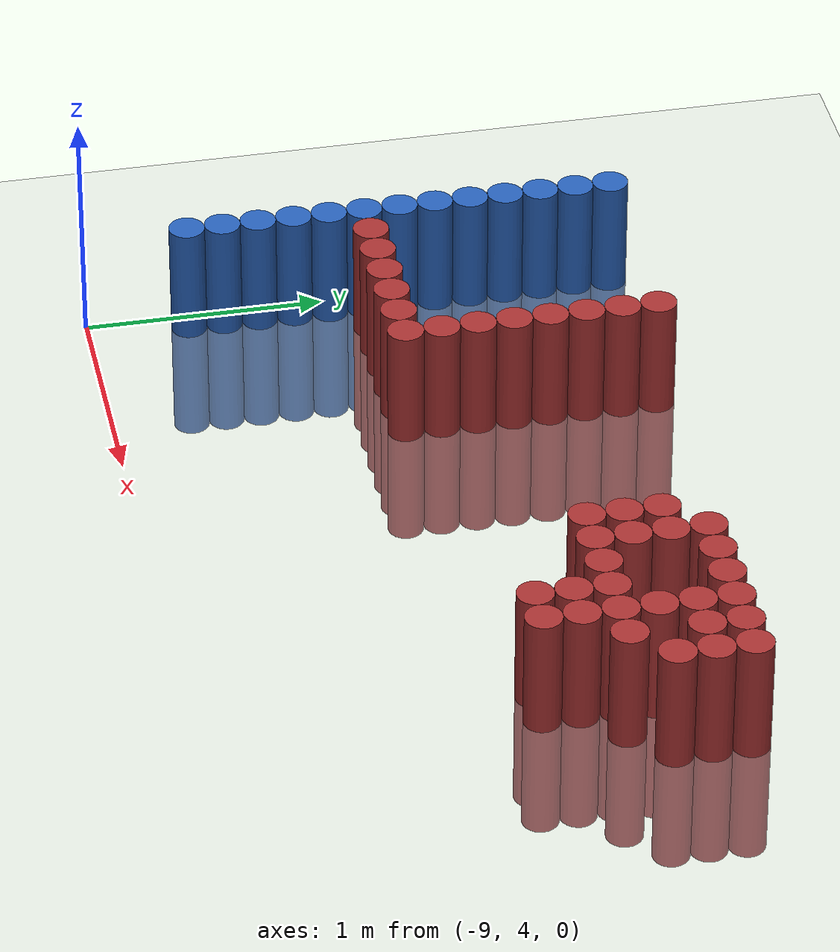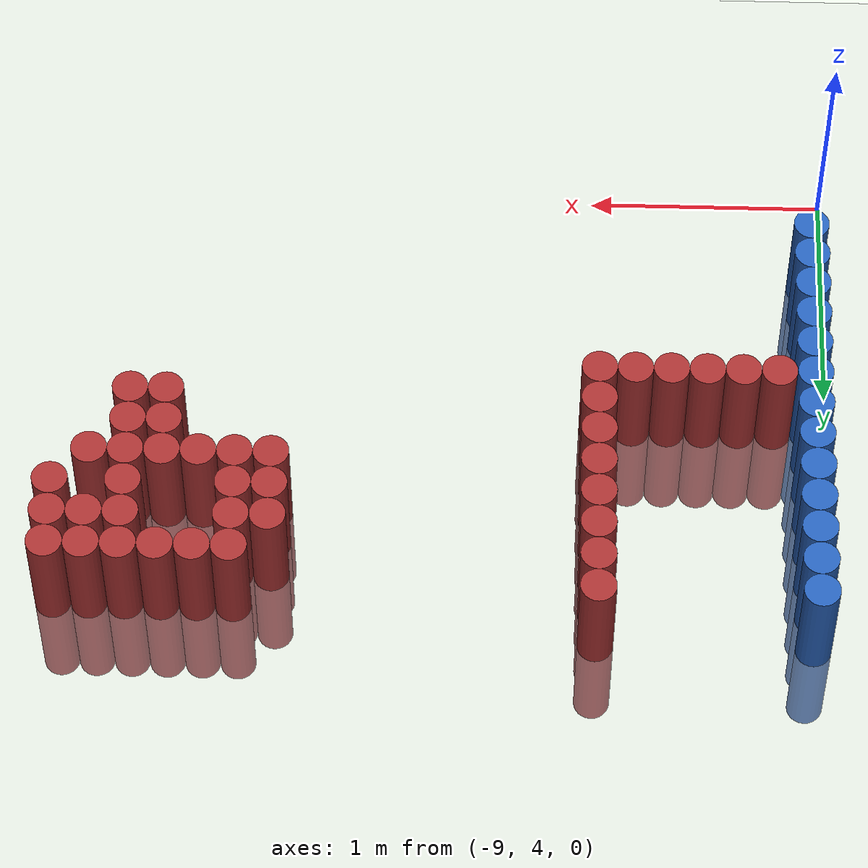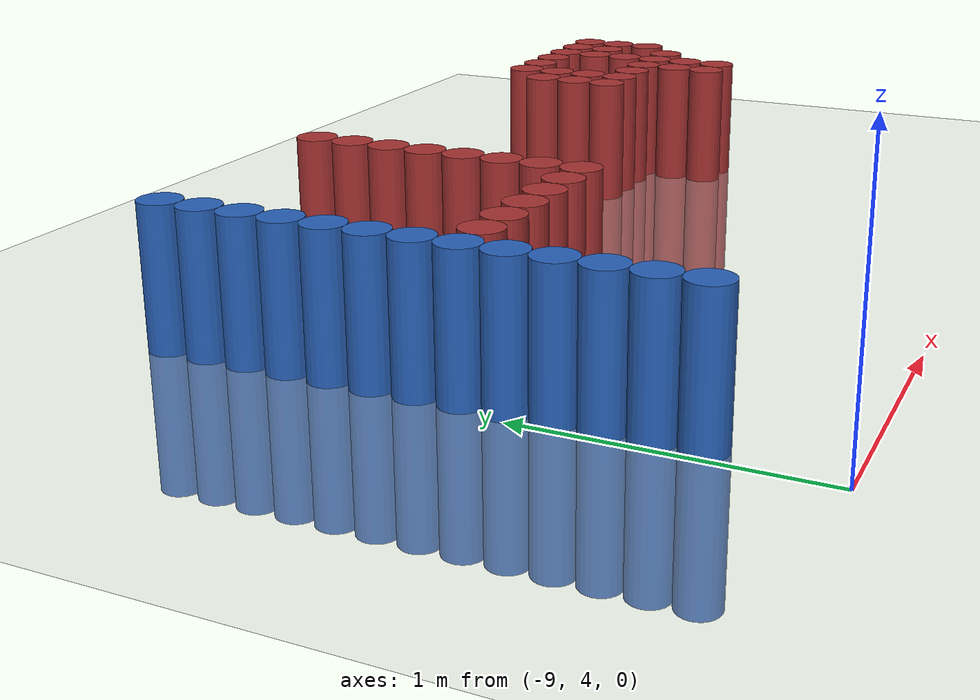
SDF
<sdf version="1.6">
 <world name="default">
  <model name="ground_plane">
   <static>1</static>
   <link name="link">
    <collision name="collision">
     <geometry><plane><normal>0 0 1</normal><size>100 100</size></plane></geometry>
     <surface><friction><ode><mu>100</mu><mu2>50</mu2></ode></friction></surface>
    </collision>
    <visual name="visual">
     <cast_shadows>0</cast_shadows>
     <geometry><plane><normal>0 0 1</normal><size>100 100</size></plane></geometry>
     <material>
      <script><uri>file://media/materials/scripts/gazebo.material</uri><name>Gazebo/Grey</name></script>
     </material>
    </visual>
   </link>
  </model>
  <model name="unit_cylinder_116">
   <static>1</static>
   <pose>-8.925000 4.425000 0.000000 0.000000 0.000000 0.000000</pose>
   <link name="link">
    <inertial>
     <mass>1</mass>
     <inertia><ixx>0.145833</ixx><ixy>0</ixy><ixz>0</ixz><iyy>0.145833</iyy><iyz>0</iyz><izz>0.125</izz></inertia>
    </inertial>
    <collision name="collision">
     <geometry><cylinder><radius>0.075000</radius><length>1</length></cylinder></geometry>
    </collision>
    <visual name="visual">
     <geometry><cylinder><radius>0.075000</radius><length>1</length></cylinder></geometry>
     <material>
      <ambient>0.152000 0.379000 0.720000 1</ambient>
      <diffuse>0.152000 0.379000 0.720000 1</diffuse>
     </material>
     <material>
      <script><name>Gazebo/Grey</name><uri>file://media/materials/scripts/gazebo.material</uri></script>
     </material>
    </visual>
   </link>
  </model>
  <model name="unit_cylinder_118">
   <static>1</static>
   <pose>-8.925000 4.575000 0.000000 0.000000 0.000000 0.000000</pose>
   <link name="link">
    <inertial>
     <mass>1</mass>
     <inertia><ixx>0.145833</ixx><ixy>0</ixy><ixz>0</ixz><iyy>0.145833</iyy><iyz>0</iyz><izz>0.125</izz></inertia>
    </inertial>
    <collision name="collision">
     <geometry><cylinder><radius>0.075000</radius><length>1</length></cylinder></geometry>
    </collision>
    <visual name="visual">
     <geometry><cylinder><radius>0.075000</radius><length>1</length></cylinder></geometry>
     <material>
      <ambient>0.152000 0.379000 0.720000 1</ambient>
      <diffuse>0.152000 0.379000 0.720000 1</diffuse>
     </material>
     <material>
      <script><name>Gazebo/Grey</name><uri>file://media/materials/scripts/gazebo.material</uri></script>
     </material>
    </visual>
   </link>
  </model>
  <model name="unit_cylinder_120">
   <static>1</static>
   <pose>-8.925000 4.725000 0.000000 0.000000 0.000000 0.000000</pose>
   <link name="link">
    <inertial>
     <mass>1</mass>
     <inertia><ixx>0.145833</ixx><ixy>0</ixy><ixz>0</ixz><iyy>0.145833</iyy><iyz>0</iyz><izz>0.125</izz></inertia>
    </inertial>
    <collision name="collision">
     <geometry><cylinder><radius>0.075000</radius><length>1</length></cylinder></geometry>
    </collision>
    <visual name="visual">
     <geometry><cylinder><radius>0.075000</radius><length>1</length></cylinder></geometry>
     <material>
      <ambient>0.152000 0.379000 0.720000 1</ambient>
      <diffuse>0.152000 0.379000 0.720000 1</diffuse>
     </material>
     <material>
      <script><name>Gazebo/Grey</name><uri>file://media/materials/scripts/gazebo.material</uri></script>
     </material>
    </visual>
   </link>
  </model>
  <model name="unit_cylinder_122">
   <static>1</static>
   <pose>-8.925000 4.875000 0.000000 0.000000 0.000000 0.000000</pose>
   <link name="link">
    <inertial>
     <mass>1</mass>
     <inertia><ixx>0.145833</ixx><ixy>0</ixy><ixz>0</ixz><iyy>0.145833</iyy><iyz>0</iyz><izz>0.125</izz></inertia>
    </inertial>
    <collision name="collision">
     <geometry><cylinder><radius>0.075000</radius><length>1</length></cylinder></geometry>
    </collision>
    <visual name="visual">
     <geometry><cylinder><radius>0.075000</radius><length>1</length></cylinder></geometry>
     <material>
      <ambient>0.152000 0.379000 0.720000 1</ambient>
      <diffuse>0.152000 0.379000 0.720000 1</diffuse>
     </material>
     <material>
      <script><name>Gazebo/Grey</name><uri>file://media/materials/scripts/gazebo.material</uri></script>
     </material>
    </visual>
   </link>
  </model>
  <model name="unit_cylinder_124">
   <static>1</static>
   <pose>-8.925000 5.025000 0.000000 0.000000 0.000000 0.000000</pose>
   <link name="link">
    <inertial>
     <mass>1</mass>
     <inertia><ixx>0.145833</ixx><ixy>0</ixy><ixz>0</ixz><iyy>0.145833</iyy><iyz>0</iyz><izz>0.125</izz></inertia>
    </inertial>
    <collision name="collision">
     <geometry><cylinder><radius>0.075000</radius><length>1</length></cylinder></geometry>
    </collision>
    <visual name="visual">
     <geometry><cylinder><radius>0.075000</radius><length>1</length></cylinder></geometry>
     <material>
      <ambient>0.152000 0.379000 0.720000 1</ambient>
      <diffuse>0.152000 0.379000 0.720000 1</diffuse>
     </material>
     <material>
      <script><name>Gazebo/Grey</name><uri>file://media/materials/scripts/gazebo.material</uri></script>
     </material>
    </visual>
   </link>
  </model>
  <model name="unit_cylinder_125">
   <static>1</static>
   <pose>-8.925000 5.175000 0.000000 0.000000 0.000000 0.000000</pose>
   <link name="link">
    <inertial>
     <mass>1</mass>
     <inertia><ixx>0.145833</ixx><ixy>0</ixy><ixz>0</ixz><iyy>0.145833</iyy><iyz>0</iyz><izz>0.125</izz></inertia>
    </inertial>
    <collision name="collision">
     <geometry><cylinder><radius>0.075000</radius><length>1</length></cylinder></geometry>
    </collision>
    <visual name="visual">
     <geometry><cylinder><radius>0.075000</radius><length>1</length></cylinder></geometry>
     <material>
      <ambient>0.152000 0.379000 0.720000 1</ambient>
      <diffuse>0.152000 0.379000 0.720000 1</diffuse>
     </material>
     <material>
      <script><name>Gazebo/Grey</name><uri>file://media/materials/scripts/gazebo.material</uri></script>
     </material>
    </visual>
   </link>
  </model>
  <model name="unit_cylinder_126">
   <static>1</static>
   <pose>-8.925000 5.325000 0.000000 0.000000 0.000000 0.000000</pose>
   <link name="link">
    <inertial>
     <mass>1</mass>
     <inertia><ixx>0.145833</ixx><ixy>0</ixy><ixz>0</ixz><iyy>0.145833</iyy><iyz>0</iyz><izz>0.125</izz></inertia>
    </inertial>
    <collision name="collision">
     <geometry><cylinder><radius>0.075000</radius><length>1</length></cylinder></geometry>
    </collision>
    <visual name="visual">
     <geometry><cylinder><radius>0.075000</radius><length>1</length></cylinder></geometry>
     <material>
      <ambient>0.152000 0.379000 0.720000 1</ambient>
      <diffuse>0.152000 0.379000 0.720000 1</diffuse>
     </material>
     <material>
      <script><name>Gazebo/Grey</name><uri>file://media/materials/scripts/gazebo.material</uri></script>
     </material>
    </visual>
   </link>
  </model>
  <model name="unit_cylinder_127">
   <static>1</static>
   <pose>-8.925000 5.475000 0.000000 0.000000 0.000000 0.000000</pose>
   <link name="link">
    <inertial>
     <mass>1</mass>
     <inertia><ixx>0.145833</ixx><ixy>0</ixy><ixz>0</ixz><iyy>0.145833</iyy><iyz>0</iyz><izz>0.125</izz></inertia>
    </inertial>
    <collision name="collision">
     <geometry><cylinder><radius>0.075000</radius><length>1</length></cylinder></geometry>
    </collision>
    <visual name="visual">
     <geometry><cylinder><radius>0.075000</radius><length>1</length></cylinder></geometry>
     <material>
      <ambient>0.152000 0.379000 0.720000 1</ambient>
      <diffuse>0.152000 0.379000 0.720000 1</diffuse>
     </material>
     <material>
      <script><name>Gazebo/Grey</name><uri>file://media/materials/scripts/gazebo.material</uri></script>
     </material>
    </visual>
   </link>
  </model>
  <model name="unit_cylinder_128">
   <static>1</static>
   <pose>-8.925000 5.625000 0.000000 0.000000 0.000000 0.000000</pose>
   <link name="link">
    <inertial>
     <mass>1</mass>
     <inertia><ixx>0.145833</ixx><ixy>0</ixy><ixz>0</ixz><iyy>0.145833</iyy><iyz>0</iyz><izz>0.125</izz></inertia>
    </inertial>
    <collision name="collision">
     <geometry><cylinder><radius>0.075000</radius><length>1</length></cylinder></geometry>
    </collision>
    <visual name="visual">
     <geometry><cylinder><radius>0.075000</radius><length>1</length></cylinder></geometry>
     <material>
      <ambient>0.152000 0.379000 0.720000 1</ambient>
      <diffuse>0.152000 0.379000 0.720000 1</diffuse>
     </material>
     <material>
      <script><name>Gazebo/Grey</name><uri>file://media/materials/scripts/gazebo.material</uri></script>
     </material>
    </visual>
   </link>
  </model>
  <model name="unit_cylinder_129">
   <static>1</static>
   <pose>-8.925000 5.775000 0.000000 0.000000 0.000000 0.000000</pose>
   <link name="link">
    <inertial>
     <mass>1</mass>
     <inertia><ixx>0.145833</ixx><ixy>0</ixy><ixz>0</ixz><iyy>0.145833</iyy><iyz>0</iyz><izz>0.125</izz></inertia>
    </inertial>
    <collision name="collision">
     <geometry><cylinder><radius>0.075000</radius><length>1</length></cylinder></geometry>
    </collision>
    <visual name="visual">
     <geometry><cylinder><radius>0.075000</radius><length>1</length></cylinder></geometry>
     <material>
      <ambient>0.152000 0.379000 0.720000 1</ambient>
      <diffuse>0.152000 0.379000 0.720000 1</diffuse>
     </material>
     <material>
      <script><name>Gazebo/Grey</name><uri>file://media/materials/scripts/gazebo.material</uri></script>
     </material>
    </visual>
   </link>
  </model>
  <model name="unit_cylinder_130">
   <static>1</static>
   <pose>-8.925000 5.925000 0.000000 0.000000 0.000000 0.000000</pose>
   <link name="link">
    <inertial>
     <mass>1</mass>
     <inertia><ixx>0.145833</ixx><ixy>0</ixy><ixz>0</ixz><iyy>0.145833</iyy><iyz>0</iyz><izz>0.125</izz></inertia>
    </inertial>
    <collision name="collision">
     <geometry><cylinder><radius>0.075000</radius><length>1</length></cylinder></geometry>
    </collision>
    <visual name="visual">
     <geometry><cylinder><radius>0.075000</radius><length>1</length></cylinder></geometry>
     <material>
      <ambient>0.152000 0.379000 0.720000 1</ambient>
      <diffuse>0.152000 0.379000 0.720000 1</diffuse>
     </material>
     <material>
      <script><name>Gazebo/Grey</name><uri>file://media/materials/scripts/gazebo.material</uri></script>
     </material>
    </visual>
   </link>
  </model>
  <model name="unit_cylinder_131">
   <static>1</static>
   <pose>-8.925000 6.075000 0.000000 0.000000 0.000000 0.000000</pose>
   <link name="link">
    <inertial>
     <mass>1</mass>
     <inertia><ixx>0.145833</ixx><ixy>0</ixy><ixz>0</ixz><iyy>0.145833</iyy><iyz>0</iyz><izz>0.125</izz></inertia>
    </inertial>
    <collision name="collision">
     <geometry><cylinder><radius>0.075000</radius><length>1</length></cylinder></geometry>
    </collision>
    <visual name="visual">
     <geometry><cylinder><radius>0.075000</radius><length>1</length></cylinder></geometry>
     <material>
      <ambient>0.152000 0.379000 0.720000 1</ambient>
      <diffuse>0.152000 0.379000 0.720000 1</diffuse>
     </material>
     <material>
      <script><name>Gazebo/Grey</name><uri>file://media/materials/scripts/gazebo.material</uri></script>
     </material>
    </visual>
   </link>
  </model>
  <model name="unit_cylinder_132">
   <static>1</static>
   <pose>-8.925000 6.225000 0.000000 0.000000 0.000000 0.000000</pose>
   <link name="link">
    <inertial>
     <mass>1</mass>
     <inertia><ixx>0.145833</ixx><ixy>0</ixy><ixz>0</ixz><iyy>0.145833</iyy><iyz>0</iyz><izz>0.125</izz></inertia>
    </inertial>
    <collision name="collision">
     <geometry><cylinder><radius>0.075000</radius><length>1</length></cylinder></geometry>
    </collision>
    <visual name="visual">
     <geometry><cylinder><radius>0.075000</radius><length>1</length></cylinder></geometry>
     <material>
      <ambient>0.152000 0.379000 0.720000 1</ambient>
      <diffuse>0.152000 0.379000 0.720000 1</diffuse>
     </material>
     <material>
      <script><name>Gazebo/Grey</name><uri>file://media/materials/scripts/gazebo.material</uri></script>
     </material>
    </visual>
   </link>
  </model>
  <model name="unit_cylinder_155">
   <static>1</static>
   <pose>-8.775000 5.175000 0.000000 0.000000 0.000000 0.000000</pose>
   <link name="link">
    <inertial>
     <mass>1</mass>
     <inertia><ixx>0.145833</ixx><ixy>0</ixy><ixz>0</ixz><iyy>0.145833</iyy><iyz>0</iyz><izz>0.125</izz></inertia>
    </inertial>
    <collision name="collision">
     <geometry><cylinder><radius>0.075000</radius><length>1</length></cylinder></geometry>
    </collision>
    <visual name="visual">
     <geometry><cylinder><radius>0.075000</radius><length>1</length></cylinder></geometry>
     <material>
      <ambient>0.648000 0.192000 0.192000 1</ambient>
      <diffuse>0.648000 0.192000 0.192000 1</diffuse>
     </material>
     <material>
      <script><name>Gazebo/Grey</name><uri>file://media/materials/scripts/gazebo.material</uri></script>
     </material>
    </visual>
   </link>
  </model>
  <model name="unit_cylinder_157">
   <static>1</static>
   <pose>-8.625000 5.175000 0.000000 0.000000 0.000000 0.000000</pose>
   <link name="link">
    <inertial>
     <mass>1</mass>
     <inertia><ixx>0.145833</ixx><ixy>0</ixy><ixz>0</ixz><iyy>0.145833</iyy><iyz>0</iyz><izz>0.125</izz></inertia>
    </inertial>
    <collision name="collision">
     <geometry><cylinder><radius>0.075000</radius><length>1</length></cylinder></geometry>
    </collision>
    <visual name="visual">
     <geometry><cylinder><radius>0.075000</radius><length>1</length></cylinder></geometry>
     <material>
      <ambient>0.648000 0.192000 0.192000 1</ambient>
      <diffuse>0.648000 0.192000 0.192000 1</diffuse>
     </material>
     <material>
      <script><name>Gazebo/Grey</name><uri>file://media/materials/scripts/gazebo.material</uri></script>
     </material>
    </visual>
   </link>
  </model>
  <model name="unit_cylinder_159">
   <static>1</static>
   <pose>-8.475000 5.175000 0.000000 0.000000 0.000000 0.000000</pose>
   <link name="link">
    <inertial>
     <mass>1</mass>
     <inertia><ixx>0.145833</ixx><ixy>0</ixy><ixz>0</ixz><iyy>0.145833</iyy><iyz>0</iyz><izz>0.125</izz></inertia>
    </inertial>
    <collision name="collision">
     <geometry><cylinder><radius>0.075000</radius><length>1</length></cylinder></geometry>
    </collision>
    <visual name="visual">
     <geometry><cylinder><radius>0.075000</radius><length>1</length></cylinder></geometry>
     <material>
      <ambient>0.648000 0.192000 0.192000 1</ambient>
      <diffuse>0.648000 0.192000 0.192000 1</diffuse>
     </material>
     <material>
      <script><name>Gazebo/Grey</name><uri>file://media/materials/scripts/gazebo.material</uri></script>
     </material>
    </visual>
   </link>
  </model>
  <model name="unit_cylinder_161">
   <static>1</static>
   <pose>-8.325000 5.175000 0.000000 0.000000 0.000000 0.000000</pose>
   <link name="link">
    <inertial>
     <mass>1</mass>
     <inertia><ixx>0.145833</ixx><ixy>0</ixy><ixz>0</ixz><iyy>0.145833</iyy><iyz>0</iyz><izz>0.125</izz></inertia>
    </inertial>
    <collision name="collision">
     <geometry><cylinder><radius>0.075000</radius><length>1</length></cylinder></geometry>
    </collision>
    <visual name="visual">
     <geometry><cylinder><radius>0.075000</radius><length>1</length></cylinder></geometry>
     <material>
      <ambient>0.648000 0.192000 0.192000 1</ambient>
      <diffuse>0.648000 0.192000 0.192000 1</diffuse>
     </material>
     <material>
      <script><name>Gazebo/Grey</name><uri>file://media/materials/scripts/gazebo.material</uri></script>
     </material>
    </visual>
   </link>
  </model>
  <model name="unit_cylinder_163">
   <static>1</static>
   <pose>-8.175000 5.175000 0.000000 0.000000 0.000000 0.000000</pose>
   <link name="link">
    <inertial>
     <mass>1</mass>
     <inertia><ixx>0.145833</ixx><ixy>0</ixy><ixz>0</ixz><iyy>0.145833</iyy><iyz>0</iyz><izz>0.125</izz></inertia>
    </inertial>
    <collision name="collision">
     <geometry><cylinder><radius>0.075000</radius><length>1</length></cylinder></geometry>
    </collision>
    <visual name="visual">
     <geometry><cylinder><radius>0.075000</radius><length>1</length></cylinder></geometry>
     <material>
      <ambient>0.648000 0.192000 0.192000 1</ambient>
      <diffuse>0.648000 0.192000 0.192000 1</diffuse>
     </material>
     <material>
      <script><name>Gazebo/Grey</name><uri>file://media/materials/scripts/gazebo.material</uri></script>
     </material>
    </visual>
   </link>
  </model>
  <model name="unit_cylinder_165">
   <static>1</static>
   <pose>-8.025000 5.175000 0.000000 0.000000 0.000000 0.000000</pose>
   <link name="link">
    <inertial>
     <mass>1</mass>
     <inertia><ixx>0.145833</ixx><ixy>0</ixy><ixz>0</ixz><iyy>0.145833</iyy><iyz>0</iyz><izz>0.125</izz></inertia>
    </inertial>
    <collision name="collision">
     <geometry><cylinder><radius>0.075000</radius><length>1</length></cylinder></geometry>
    </collision>
    <visual name="visual">
     <geometry><cylinder><radius>0.075000</radius><length>1</length></cylinder></geometry>
     <material>
      <ambient>0.648000 0.192000 0.192000 1</ambient>
      <diffuse>0.648000 0.192000 0.192000 1</diffuse>
     </material>
     <material>
      <script><name>Gazebo/Grey</name><uri>file://media/materials/scripts/gazebo.material</uri></script>
     </material>
    </visual>
   </link>
  </model>
  <model name="unit_cylinder_166">
   <static>1</static>
   <pose>-8.025000 5.325000 0.000000 0.000000 0.000000 0.000000</pose>
   <link name="link">
    <inertial>
     <mass>1</mass>
     <inertia><ixx>0.145833</ixx><ixy>0</ixy><ixz>0</ixz><iyy>0.145833</iyy><iyz>0</iyz><izz>0.125</izz></inertia>
    </inertial>
    <collision name="collision">
     <geometry><cylinder><radius>0.075000</radius><length>1</length></cylinder></geometry>
    </collision>
    <visual name="visual">
     <geometry><cylinder><radius>0.075000</radius><length>1</length></cylinder></geometry>
     <material>
      <ambient>0.648000 0.192000 0.192000 1</ambient>
      <diffuse>0.648000 0.192000 0.192000 1</diffuse>
     </material>
     <material>
      <script><name>Gazebo/Grey</name><uri>file://media/materials/scripts/gazebo.material</uri></script>
     </material>
    </visual>
   </link>
  </model>
  <model name="unit_cylinder_167">
   <static>1</static>
   <pose>-8.025000 5.475000 0.000000 0.000000 0.000000 0.000000</pose>
   <link name="link">
    <inertial>
     <mass>1</mass>
     <inertia><ixx>0.145833</ixx><ixy>0</ixy><ixz>0</ixz><iyy>0.145833</iyy><iyz>0</iyz><izz>0.125</izz></inertia>
    </inertial>
    <collision name="collision">
     <geometry><cylinder><radius>0.075000</radius><length>1</length></cylinder></geometry>
    </collision>
    <visual name="visual">
     <geometry><cylinder><radius>0.075000</radius><length>1</length></cylinder></geometry>
     <material>
      <ambient>0.648000 0.192000 0.192000 1</ambient>
      <diffuse>0.648000 0.192000 0.192000 1</diffuse>
     </material>
     <material>
      <script><name>Gazebo/Grey</name><uri>file://media/materials/scripts/gazebo.material</uri></script>
     </material>
    </visual>
   </link>
  </model>
  <model name="unit_cylinder_168">
   <static>1</static>
   <pose>-8.025000 5.625000 0.000000 0.000000 0.000000 0.000000</pose>
   <link name="link">
    <inertial>
     <mass>1</mass>
     <inertia><ixx>0.145833</ixx><ixy>0</ixy><ixz>0</ixz><iyy>0.145833</iyy><iyz>0</iyz><izz>0.125</izz></inertia>
    </inertial>
    <collision name="collision">
     <geometry><cylinder><radius>0.075000</radius><length>1</length></cylinder></geometry>
    </collision>
    <visual name="visual">
     <geometry><cylinder><radius>0.075000</radius><length>1</length></cylinder></geometry>
     <material>
      <ambient>0.648000 0.192000 0.192000 1</ambient>
      <diffuse>0.648000 0.192000 0.192000 1</diffuse>
     </material>
     <material>
      <script><name>Gazebo/Grey</name><uri>file://media/materials/scripts/gazebo.material</uri></script>
     </material>
    </visual>
   </link>
  </model>
  <model name="unit_cylinder_169">
   <static>1</static>
   <pose>-8.025000 5.775000 0.000000 0.000000 0.000000 0.000000</pose>
   <link name="link">
    <inertial>
     <mass>1</mass>
     <inertia><ixx>0.145833</ixx><ixy>0</ixy><ixz>0</ixz><iyy>0.145833</iyy><iyz>0</iyz><izz>0.125</izz></inertia>
    </inertial>
    <collision name="collision">
     <geometry><cylinder><radius>0.075000</radius><length>1</length></cylinder></geometry>
    </collision>
    <visual name="visual">
     <geometry><cylinder><radius>0.075000</radius><length>1</length></cylinder></geometry>
     <material>
      <ambient>0.648000 0.192000 0.192000 1</ambient>
      <diffuse>0.648000 0.192000 0.192000 1</diffuse>
     </material>
     <material>
      <script><name>Gazebo/Grey</name><uri>file://media/materials/scripts/gazebo.material</uri></script>
     </material>
    </visual>
   </link>
  </model>
  <model name="unit_cylinder_170">
   <static>1</static>
   <pose>-8.025000 5.925000 0.000000 0.000000 0.000000 0.000000</pose>
   <link name="link">
    <inertial>
     <mass>1</mass>
     <inertia><ixx>0.145833</ixx><ixy>0</ixy><ixz>0</ixz><iyy>0.145833</iyy><iyz>0</iyz><izz>0.125</izz></inertia>
    </inertial>
    <collision name="collision">
     <geometry><cylinder><radius>0.075000</radius><length>1</length></cylinder></geometry>
    </collision>
    <visual name="visual">
     <geometry><cylinder><radius>0.075000</radius><length>1</length></cylinder></geometry>
     <material>
      <ambient>0.648000 0.192000 0.192000 1</ambient>
      <diffuse>0.648000 0.192000 0.192000 1</diffuse>
     </material>
     <material>
      <script><name>Gazebo/Grey</name><uri>file://media/materials/scripts/gazebo.material</uri></script>
     </material>
    </visual>
   </link>
  </model>
  <model name="unit_cylinder_171">
   <static>1</static>
   <pose>-8.025000 6.075000 0.000000 0.000000 0.000000 0.000000</pose>
   <link name="link">
    <inertial>
     <mass>1</mass>
     <inertia><ixx>0.145833</ixx><ixy>0</ixy><ixz>0</ixz><iyy>0.145833</iyy><iyz>0</iyz><izz>0.125</izz></inertia>
    </inertial>
    <collision name="collision">
     <geometry><cylinder><radius>0.075000</radius><length>1</length></cylinder></geometry>
    </collision>
    <visual name="visual">
     <geometry><cylinder><radius>0.075000</radius><length>1</length></cylinder></geometry>
     <material>
      <ambient>0.648000 0.192000 0.192000 1</ambient>
      <diffuse>0.648000 0.192000 0.192000 1</diffuse>
     </material>
     <material>
      <script><name>Gazebo/Grey</name><uri>file://media/materials/scripts/gazebo.material</uri></script>
     </material>
    </visual>
   </link>
  </model>
  <model name="unit_cylinder_172">
   <static>1</static>
   <pose>-8.025000 6.225000 0.000000 0.000000 0.000000 0.000000</pose>
   <link name="link">
    <inertial>
     <mass>1</mass>
     <inertia><ixx>0.145833</ixx><ixy>0</ixy><ixz>0</ixz><iyy>0.145833</iyy><iyz>0</iyz><izz>0.125</izz></inertia>
    </inertial>
    <collision name="collision">
     <geometry><cylinder><radius>0.075000</radius><length>1</length></cylinder></geometry>
    </collision>
    <visual name="visual">
     <geometry><cylinder><radius>0.075000</radius><length>1</length></cylinder></geometry>
     <material>
      <ambient>0.648000 0.192000 0.192000 1</ambient>
      <diffuse>0.648000 0.192000 0.192000 1</diffuse>
     </material>
     <material>
      <script><name>Gazebo/Grey</name><uri>file://media/materials/scripts/gazebo.material</uri></script>
     </material>
    </visual>
   </link>
  </model>
  <model name="unit_cylinder_202">
   <static>1</static>
   <pose>-6.675000 5.625000 0.000000 0.000000 0.000000 0.000000</pose>
   <link name="link">
    <inertial>
     <mass>1</mass>
     <inertia><ixx>0.145833</ixx><ixy>0</ixy><ixz>0</ixz><iyy>0.145833</iyy><iyz>0</iyz><izz>0.125</izz></inertia>
    </inertial>
    <collision name="collision">
     <geometry><cylinder><radius>0.075000</radius><length>1</length></cylinder></geometry>
    </collision>
    <visual name="visual">
     <geometry><cylinder><radius>0.075000</radius><length>1</length></cylinder></geometry>
     <material>
      <ambient>0.648000 0.192000 0.192000 1</ambient>
      <diffuse>0.648000 0.192000 0.192000 1</diffuse>
     </material>
     <material>
      <script><name>Gazebo/Grey</name><uri>file://media/materials/scripts/gazebo.material</uri></script>
     </material>
    </visual>
   </link>
  </model>
  <model name="unit_cylinder_203">
   <static>1</static>
   <pose>-6.675000 5.775000 0.000000 0.000000 0.000000 0.000000</pose>
   <link name="link">
    <inertial>
     <mass>1</mass>
     <inertia><ixx>0.145833</ixx><ixy>0</ixy><ixz>0</ixz><iyy>0.145833</iyy><iyz>0</iyz><izz>0.125</izz></inertia>
    </inertial>
    <collision name="collision">
     <geometry><cylinder><radius>0.075000</radius><length>1</length></cylinder></geometry>
    </collision>
    <visual name="visual">
     <geometry><cylinder><radius>0.075000</radius><length>1</length></cylinder></geometry>
     <material>
      <ambient>0.648000 0.192000 0.192000 1</ambient>
      <diffuse>0.648000 0.192000 0.192000 1</diffuse>
     </material>
     <material>
      <script><name>Gazebo/Grey</name><uri>file://media/materials/scripts/gazebo.material</uri></script>
     </material>
    </visual>
   </link>
  </model>
  <model name="unit_cylinder_204">
   <static>1</static>
   <pose>-6.675000 5.925000 0.000000 0.000000 0.000000 0.000000</pose>
   <link name="link">
    <inertial>
     <mass>1</mass>
     <inertia><ixx>0.145833</ixx><ixy>0</ixy><ixz>0</ixz><iyy>0.145833</iyy><iyz>0</iyz><izz>0.125</izz></inertia>
    </inertial>
    <collision name="collision">
     <geometry><cylinder><radius>0.075000</radius><length>1</length></cylinder></geometry>
    </collision>
    <visual name="visual">
     <geometry><cylinder><radius>0.075000</radius><length>1</length></cylinder></geometry>
     <material>
      <ambient>0.648000 0.192000 0.192000 1</ambient>
      <diffuse>0.648000 0.192000 0.192000 1</diffuse>
     </material>
     <material>
      <script><name>Gazebo/Grey</name><uri>file://media/materials/scripts/gazebo.material</uri></script>
     </material>
    </visual>
   </link>
  </model>
  <model name="unit_cylinder_207">
   <static>1</static>
   <pose>-6.525000 5.625000 0.000000 0.000000 0.000000 0.000000</pose>
   <link name="link">
    <inertial>
     <mass>1</mass>
     <inertia><ixx>0.145833</ixx><ixy>0</ixy><ixz>0</ixz><iyy>0.145833</iyy><iyz>0</iyz><izz>0.125</izz></inertia>
    </inertial>
    <collision name="collision">
     <geometry><cylinder><radius>0.075000</radius><length>1</length></cylinder></geometry>
    </collision>
    <visual name="visual">
     <geometry><cylinder><radius>0.075000</radius><length>1</length></cylinder></geometry>
     <material>
      <ambient>0.648000 0.192000 0.192000 1</ambient>
      <diffuse>0.648000 0.192000 0.192000 1</diffuse>
     </material>
     <material>
      <script><name>Gazebo/Grey</name><uri>file://media/materials/scripts/gazebo.material</uri></script>
     </material>
    </visual>
   </link>
  </model>
  <model name="unit_cylinder_208">
   <static>1</static>
   <pose>-6.525000 5.775000 0.000000 0.000000 0.000000 0.000000</pose>
   <link name="link">
    <inertial>
     <mass>1</mass>
     <inertia><ixx>0.145833</ixx><ixy>0</ixy><ixz>0</ixz><iyy>0.145833</iyy><iyz>0</iyz><izz>0.125</izz></inertia>
    </inertial>
    <collision name="collision">
     <geometry><cylinder><radius>0.075000</radius><length>1</length></cylinder></geometry>
    </collision>
    <visual name="visual">
     <geometry><cylinder><radius>0.075000</radius><length>1</length></cylinder></geometry>
     <material>
      <ambient>0.648000 0.192000 0.192000 1</ambient>
      <diffuse>0.648000 0.192000 0.192000 1</diffuse>
     </material>
     <material>
      <script><name>Gazebo/Grey</name><uri>file://media/materials/scripts/gazebo.material</uri></script>
     </material>
    </visual>
   </link>
  </model>
  <model name="unit_cylinder_209">
   <static>1</static>
   <pose>-6.525000 5.925000 0.000000 0.000000 0.000000 0.000000</pose>
   <link name="link">
    <inertial>
     <mass>1</mass>
     <inertia><ixx>0.145833</ixx><ixy>0</ixy><ixz>0</ixz><iyy>0.145833</iyy><iyz>0</iyz><izz>0.125</izz></inertia>
    </inertial>
    <collision name="collision">
     <geometry><cylinder><radius>0.075000</radius><length>1</length></cylinder></geometry>
    </collision>
    <visual name="visual">
     <geometry><cylinder><radius>0.075000</radius><length>1</length></cylinder></geometry>
     <material>
      <ambient>0.648000 0.192000 0.192000 1</ambient>
      <diffuse>0.648000 0.192000 0.192000 1</diffuse>
     </material>
     <material>
      <script><name>Gazebo/Grey</name><uri>file://media/materials/scripts/gazebo.material</uri></script>
     </material>
    </visual>
   </link>
  </model>
  <model name="unit_cylinder_210">
   <static>1</static>
   <pose>-6.525000 6.075000 0.000000 0.000000 0.000000 0.000000</pose>
   <link name="link">
    <inertial>
     <mass>1</mass>
     <inertia><ixx>0.145833</ixx><ixy>0</ixy><ixz>0</ixz><iyy>0.145833</iyy><iyz>0</iyz><izz>0.125</izz></inertia>
    </inertial>
    <collision name="collision">
     <geometry><cylinder><radius>0.075000</radius><length>1</length></cylinder></geometry>
    </collision>
    <visual name="visual">
     <geometry><cylinder><radius>0.075000</radius><length>1</length></cylinder></geometry>
     <material>
      <ambient>0.648000 0.192000 0.192000 1</ambient>
      <diffuse>0.648000 0.192000 0.192000 1</diffuse>
     </material>
     <material>
      <script><name>Gazebo/Grey</name><uri>file://media/materials/scripts/gazebo.material</uri></script>
     </material>
    </visual>
   </link>
  </model>
  <model name="unit_cylinder_213">
   <static>1</static>
   <pose>-6.375000 5.625000 0.000000 0.000000 0.000000 0.000000</pose>
   <link name="link">
    <inertial>
     <mass>1</mass>
     <inertia><ixx>0.145833</ixx><ixy>0</ixy><ixz>0</ixz><iyy>0.145833</iyy><iyz>0</iyz><izz>0.125</izz></inertia>
    </inertial>
    <collision name="collision">
     <geometry><cylinder><radius>0.075000</radius><length>1</length></cylinder></geometry>
    </collision>
    <visual name="visual">
     <geometry><cylinder><radius>0.075000</radius><length>1</length></cylinder></geometry>
     <material>
      <ambient>0.648000 0.192000 0.192000 1</ambient>
      <diffuse>0.648000 0.192000 0.192000 1</diffuse>
     </material>
     <material>
      <script><name>Gazebo/Grey</name><uri>file://media/materials/scripts/gazebo.material</uri></script>
     </material>
    </visual>
   </link>
  </model>
  <model name="unit_cylinder_214">
   <static>1</static>
   <pose>-6.375000 6.075000 0.000000 0.000000 0.000000 0.000000</pose>
   <link name="link">
    <inertial>
     <mass>1</mass>
     <inertia><ixx>0.145833</ixx><ixy>0</ixy><ixz>0</ixz><iyy>0.145833</iyy><iyz>0</iyz><izz>0.125</izz></inertia>
    </inertial>
    <collision name="collision">
     <geometry><cylinder><radius>0.075000</radius><length>1</length></cylinder></geometry>
    </collision>
    <visual name="visual">
     <geometry><cylinder><radius>0.075000</radius><length>1</length></cylinder></geometry>
     <material>
      <ambient>0.648000 0.192000 0.192000 1</ambient>
      <diffuse>0.648000 0.192000 0.192000 1</diffuse>
     </material>
     <material>
      <script><name>Gazebo/Grey</name><uri>file://media/materials/scripts/gazebo.material</uri></script>
     </material>
    </visual>
   </link>
  </model>
  <model name="unit_cylinder_217">
   <static>1</static>
   <pose>-6.225000 5.325000 0.000000 0.000000 0.000000 0.000000</pose>
   <link name="link">
    <inertial>
     <mass>1</mass>
     <inertia><ixx>0.145833</ixx><ixy>0</ixy><ixz>0</ixz><iyy>0.145833</iyy><iyz>0</iyz><izz>0.125</izz></inertia>
    </inertial>
    <collision name="collision">
     <geometry><cylinder><radius>0.075000</radius><length>1</length></cylinder></geometry>
    </collision>
    <visual name="visual">
     <geometry><cylinder><radius>0.075000</radius><length>1</length></cylinder></geometry>
     <material>
      <ambient>0.648000 0.192000 0.192000 1</ambient>
      <diffuse>0.648000 0.192000 0.192000 1</diffuse>
     </material>
     <material>
      <script><name>Gazebo/Grey</name><uri>file://media/materials/scripts/gazebo.material</uri></script>
     </material>
    </visual>
   </link>
  </model>
  <model name="unit_cylinder_218">
   <static>1</static>
   <pose>-6.225000 5.475000 0.000000 0.000000 0.000000 0.000000</pose>
   <link name="link">
    <inertial>
     <mass>1</mass>
     <inertia><ixx>0.145833</ixx><ixy>0</ixy><ixz>0</ixz><iyy>0.145833</iyy><iyz>0</iyz><izz>0.125</izz></inertia>
    </inertial>
    <collision name="collision">
     <geometry><cylinder><radius>0.075000</radius><length>1</length></cylinder></geometry>
    </collision>
    <visual name="visual">
     <geometry><cylinder><radius>0.075000</radius><length>1</length></cylinder></geometry>
     <material>
      <ambient>0.648000 0.192000 0.192000 1</ambient>
      <diffuse>0.648000 0.192000 0.192000 1</diffuse>
     </material>
     <material>
      <script><name>Gazebo/Grey</name><uri>file://media/materials/scripts/gazebo.material</uri></script>
     </material>
    </visual>
   </link>
  </model>
  <model name="unit_cylinder_219">
   <static>1</static>
   <pose>-6.225000 5.625000 0.000000 0.000000 0.000000 0.000000</pose>
   <link name="link">
    <inertial>
     <mass>1</mass>
     <inertia><ixx>0.145833</ixx><ixy>0</ixy><ixz>0</ixz><iyy>0.145833</iyy><iyz>0</iyz><izz>0.125</izz></inertia>
    </inertial>
    <collision name="collision">
     <geometry><cylinder><radius>0.075000</radius><length>1</length></cylinder></geometry>
    </collision>
    <visual name="visual">
     <geometry><cylinder><radius>0.075000</radius><length>1</length></cylinder></geometry>
     <material>
      <ambient>0.648000 0.192000 0.192000 1</ambient>
      <diffuse>0.648000 0.192000 0.192000 1</diffuse>
     </material>
     <material>
      <script><name>Gazebo/Grey</name><uri>file://media/materials/scripts/gazebo.material</uri></script>
     </material>
    </visual>
   </link>
  </model>
  <model name="unit_cylinder_220">
   <static>1</static>
   <pose>-6.225000 6.075000 0.000000 0.000000 0.000000 0.000000</pose>
   <link name="link">
    <inertial>
     <mass>1</mass>
     <inertia><ixx>0.145833</ixx><ixy>0</ixy><ixz>0</ixz><iyy>0.145833</iyy><iyz>0</iyz><izz>0.125</izz></inertia>
    </inertial>
    <collision name="collision">
     <geometry><cylinder><radius>0.075000</radius><length>1</length></cylinder></geometry>
    </collision>
    <visual name="visual">
     <geometry><cylinder><radius>0.075000</radius><length>1</length></cylinder></geometry>
     <material>
      <ambient>0.648000 0.192000 0.192000 1</ambient>
      <diffuse>0.648000 0.192000 0.192000 1</diffuse>
     </material>
     <material>
      <script><name>Gazebo/Grey</name><uri>file://media/materials/scripts/gazebo.material</uri></script>
     </material>
    </visual>
   </link>
  </model>
  <model name="unit_cylinder_224">
   <static>1</static>
   <pose>-6.075000 5.325000 0.000000 0.000000 0.000000 0.000000</pose>
   <link name="link">
    <inertial>
     <mass>1</mass>
     <inertia><ixx>0.145833</ixx><ixy>0</ixy><ixz>0</ixz><iyy>0.145833</iyy><iyz>0</iyz><izz>0.125</izz></inertia>
    </inertial>
    <collision name="collision">
     <geometry><cylinder><radius>0.075000</radius><length>1</length></cylinder></geometry>
    </collision>
    <visual name="visual">
     <geometry><cylinder><radius>0.075000</radius><length>1</length></cylinder></geometry>
     <material>
      <ambient>0.648000 0.192000 0.192000 1</ambient>
      <diffuse>0.648000 0.192000 0.192000 1</diffuse>
     </material>
     <material>
      <script><name>Gazebo/Grey</name><uri>file://media/materials/scripts/gazebo.material</uri></script>
     </material>
    </visual>
   </link>
  </model>
  <model name="unit_cylinder_225">
   <static>1</static>
   <pose>-6.075000 5.475000 0.000000 0.000000 0.000000 0.000000</pose>
   <link name="link">
    <inertial>
     <mass>1</mass>
     <inertia><ixx>0.145833</ixx><ixy>0</ixy><ixz>0</ixz><iyy>0.145833</iyy><iyz>0</iyz><izz>0.125</izz></inertia>
    </inertial>
    <collision name="collision">
     <geometry><cylinder><radius>0.075000</radius><length>1</length></cylinder></geometry>
    </collision>
    <visual name="visual">
     <geometry><cylinder><radius>0.075000</radius><length>1</length></cylinder></geometry>
     <material>
      <ambient>0.648000 0.192000 0.192000 1</ambient>
      <diffuse>0.648000 0.192000 0.192000 1</diffuse>
     </material>
     <material>
      <script><name>Gazebo/Grey</name><uri>file://media/materials/scripts/gazebo.material</uri></script>
     </material>
    </visual>
   </link>
  </model>
  <model name="unit_cylinder_226">
   <static>1</static>
   <pose>-6.075000 5.625000 0.000000 0.000000 0.000000 0.000000</pose>
   <link name="link">
    <inertial>
     <mass>1</mass>
     <inertia><ixx>0.145833</ixx><ixy>0</ixy><ixz>0</ixz><iyy>0.145833</iyy><iyz>0</iyz><izz>0.125</izz></inertia>
    </inertial>
    <collision name="collision">
     <geometry><cylinder><radius>0.075000</radius><length>1</length></cylinder></geometry>
    </collision>
    <visual name="visual">
     <geometry><cylinder><radius>0.075000</radius><length>1</length></cylinder></geometry>
     <material>
      <ambient>0.648000 0.192000 0.192000 1</ambient>
      <diffuse>0.648000 0.192000 0.192000 1</diffuse>
     </material>
     <material>
      <script><name>Gazebo/Grey</name><uri>file://media/materials/scripts/gazebo.material</uri></script>
     </material>
    </visual>
   </link>
  </model>
  <model name="unit_cylinder_227">
   <static>1</static>
   <pose>-6.075000 5.775000 0.000000 0.000000 0.000000 0.000000</pose>
   <link name="link">
    <inertial>
     <mass>1</mass>
     <inertia><ixx>0.145833</ixx><ixy>0</ixy><ixz>0</ixz><iyy>0.145833</iyy><iyz>0</iyz><izz>0.125</izz></inertia>
    </inertial>
    <collision name="collision">
     <geometry><cylinder><radius>0.075000</radius><length>1</length></cylinder></geometry>
    </collision>
    <visual name="visual">
     <geometry><cylinder><radius>0.075000</radius><length>1</length></cylinder></geometry>
     <material>
      <ambient>0.648000 0.192000 0.192000 1</ambient>
      <diffuse>0.648000 0.192000 0.192000 1</diffuse>
     </material>
     <material>
      <script><name>Gazebo/Grey</name><uri>file://media/materials/scripts/gazebo.material</uri></script>
     </material>
    </visual>
   </link>
  </model>
  <model name="unit_cylinder_228">
   <static>1</static>
   <pose>-6.075000 5.925000 0.000000 0.000000 0.000000 0.000000</pose>
   <link name="link">
    <inertial>
     <mass>1</mass>
     <inertia><ixx>0.145833</ixx><ixy>0</ixy><ixz>0</ixz><iyy>0.145833</iyy><iyz>0</iyz><izz>0.125</izz></inertia>
    </inertial>
    <collision name="collision">
     <geometry><cylinder><radius>0.075000</radius><length>1</length></cylinder></geometry>
    </collision>
    <visual name="visual">
     <geometry><cylinder><radius>0.075000</radius><length>1</length></cylinder></geometry>
     <material>
      <ambient>0.648000 0.192000 0.192000 1</ambient>
      <diffuse>0.648000 0.192000 0.192000 1</diffuse>
     </material>
     <material>
      <script><name>Gazebo/Grey</name><uri>file://media/materials/scripts/gazebo.material</uri></script>
     </material>
    </visual>
   </link>
  </model>
  <model name="unit_cylinder_229">
   <static>1</static>
   <pose>-6.075000 6.075000 0.000000 0.000000 0.000000 0.000000</pose>
   <link name="link">
    <inertial>
     <mass>1</mass>
     <inertia><ixx>0.145833</ixx><ixy>0</ixy><ixz>0</ixz><iyy>0.145833</iyy><iyz>0</iyz><izz>0.125</izz></inertia>
    </inertial>
    <collision name="collision">
     <geometry><cylinder><radius>0.075000</radius><length>1</length></cylinder></geometry>
    </collision>
    <visual name="visual">
     <geometry><cylinder><radius>0.075000</radius><length>1</length></cylinder></geometry>
     <material>
      <ambient>0.648000 0.192000 0.192000 1</ambient>
      <diffuse>0.648000 0.192000 0.192000 1</diffuse>
     </material>
     <material>
      <script><name>Gazebo/Grey</name><uri>file://media/materials/scripts/gazebo.material</uri></script>
     </material>
    </visual>
   </link>
  </model>
  <model name="unit_cylinder_245">
   <static>1</static>
   <pose>-5.925000 5.625000 0.000000 0.000000 0.000000 0.000000</pose>
   <link name="link">
    <inertial>
     <mass>1</mass>
     <inertia><ixx>0.145833</ixx><ixy>0</ixy><ixz>0</ixz><iyy>0.145833</iyy><iyz>0</iyz><izz>0.125</izz></inertia>
    </inertial>
    <collision name="collision">
     <geometry><cylinder><radius>0.075000</radius><length>1</length></cylinder></geometry>
    </collision>
    <visual name="visual">
     <geometry><cylinder><radius>0.075000</radius><length>1</length></cylinder></geometry>
     <material>
      <ambient>0.648000 0.192000 0.192000 1</ambient>
      <diffuse>0.648000 0.192000 0.192000 1</diffuse>
     </material>
     <material>
      <script><name>Gazebo/Grey</name><uri>file://media/materials/scripts/gazebo.material</uri></script>
     </material>
    </visual>
   </link>
  </model>
  <model name="unit_cylinder_246">
   <static>1</static>
   <pose>-5.925000 5.925000 0.000000 0.000000 0.000000 0.000000</pose>
   <link name="link">
    <inertial>
     <mass>1</mass>
     <inertia><ixx>0.145833</ixx><ixy>0</ixy><ixz>0</ixz><iyy>0.145833</iyy><iyz>0</iyz><izz>0.125</izz></inertia>
    </inertial>
    <collision name="collision">
     <geometry><cylinder><radius>0.075000</radius><length>1</length></cylinder></geometry>
    </collision>
    <visual name="visual">
     <geometry><cylinder><radius>0.075000</radius><length>1</length></cylinder></geometry>
     <material>
      <ambient>0.648000 0.192000 0.192000 1</ambient>
      <diffuse>0.648000 0.192000 0.192000 1</diffuse>
     </material>
     <material>
      <script><name>Gazebo/Grey</name><uri>file://media/materials/scripts/gazebo.material</uri></script>
     </material>
    </visual>
   </link>
  </model>
  <model name="unit_cylinder_247">
   <static>1</static>
   <pose>-5.925000 6.075000 0.000000 0.000000 0.000000 0.000000</pose>
   <link name="link">
    <inertial>
     <mass>1</mass>
     <inertia><ixx>0.145833</ixx><ixy>0</ixy><ixz>0</ixz><iyy>0.145833</iyy><iyz>0</iyz><izz>0.125</izz></inertia>
    </inertial>
    <collision name="collision">
     <geometry><cylinder><radius>0.075000</radius><length>1</length></cylinder></geometry>
    </collision>
    <visual name="visual">
     <geometry><cylinder><radius>0.075000</radius><length>1</length></cylinder></geometry>
     <material>
      <ambient>0.648000 0.192000 0.192000 1</ambient>
      <diffuse>0.648000 0.192000 0.192000 1</diffuse>
     </material>
     <material>
      <script><name>Gazebo/Grey</name><uri>file://media/materials/scripts/gazebo.material</uri></script>
     </material>
    </visual>
   </link>
  </model>
  <model name="unit_cylinder_251">
   <static>1</static>
   <pose>-5.775000 5.775000 0.000000 0.000000 0.000000 0.000000</pose>
   <link name="link">
    <inertial>
     <mass>1</mass>
     <inertia><ixx>0.145833</ixx><ixy>0</ixy><ixz>0</ixz><iyy>0.145833</iyy><iyz>0</iyz><izz>0.125</izz></inertia>
    </inertial>
    <collision name="collision">
     <geometry><cylinder><radius>0.075000</radius><length>1</length></cylinder></geometry>
    </collision>
    <visual name="visual">
     <geometry><cylinder><radius>0.075000</radius><length>1</length></cylinder></geometry>
     <material>
      <ambient>0.648000 0.192000 0.192000 1</ambient>
      <diffuse>0.648000 0.192000 0.192000 1</diffuse>
     </material>
     <material>
      <script><name>Gazebo/Grey</name><uri>file://media/materials/scripts/gazebo.material</uri></script>
     </material>
    </visual>
   </link>
  </model>
  <model name="unit_cylinder_252">
   <static>1</static>
   <pose>-5.775000 5.925000 0.000000 0.000000 0.000000 0.000000</pose>
   <link name="link">
    <inertial>
     <mass>1</mass>
     <inertia><ixx>0.145833</ixx><ixy>0</ixy><ixz>0</ixz><iyy>0.145833</iyy><iyz>0</iyz><izz>0.125</izz></inertia>
    </inertial>
    <collision name="collision">
     <geometry><cylinder><radius>0.075000</radius><length>1</length></cylinder></geometry>
    </collision>
    <visual name="visual">
     <geometry><cylinder><radius>0.075000</radius><length>1</length></cylinder></geometry>
     <material>
      <ambient>0.648000 0.192000 0.192000 1</ambient>
      <diffuse>0.648000 0.192000 0.192000 1</diffuse>
     </material>
     <material>
      <script><name>Gazebo/Grey</name><uri>file://media/materials/scripts/gazebo.material</uri></script>
     </material>
    </visual>
   </link>
  </model>
  <model name="unit_cylinder_253">
   <static>1</static>
   <pose>-5.775000 6.075000 0.000000 0.000000 0.000000 0.000000</pose>
   <link name="link">
    <inertial>
     <mass>1</mass>
     <inertia><ixx>0.145833</ixx><ixy>0</ixy><ixz>0</ixz><iyy>0.145833</iyy><iyz>0</iyz><izz>0.125</izz></inertia>
    </inertial>
    <collision name="collision">
     <geometry><cylinder><radius>0.075000</radius><length>1</length></cylinder></geometry>
    </collision>
    <visual name="visual">
     <geometry><cylinder><radius>0.075000</radius><length>1</length></cylinder></geometry>
     <material>
      <ambient>0.648000 0.192000 0.192000 1</ambient>
      <diffuse>0.648000 0.192000 0.192000 1</diffuse>
     </material>
     <material>
      <script><name>Gazebo/Grey</name><uri>file://media/materials/scripts/gazebo.material</uri></script>
     </material>
    </visual>
   </link>
  </model>
 </world>
</sdf>
